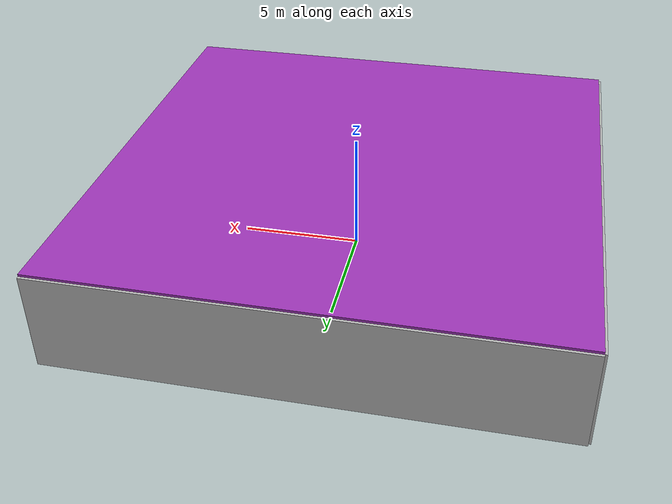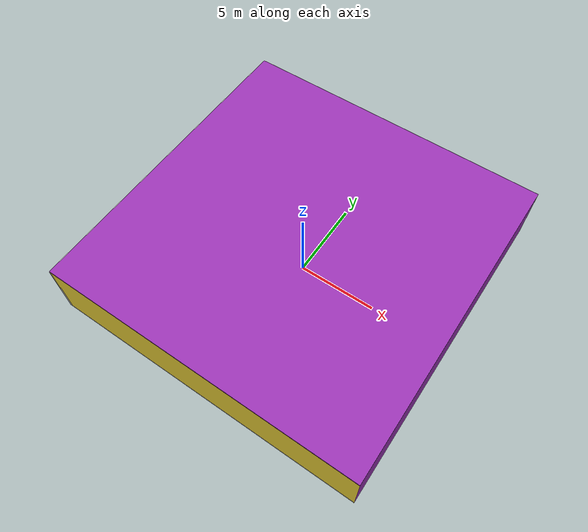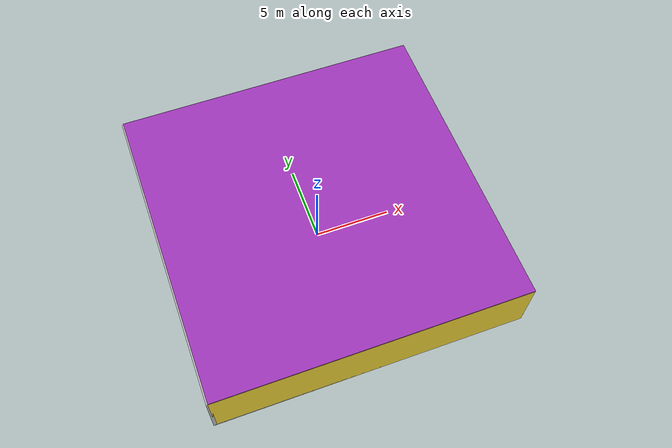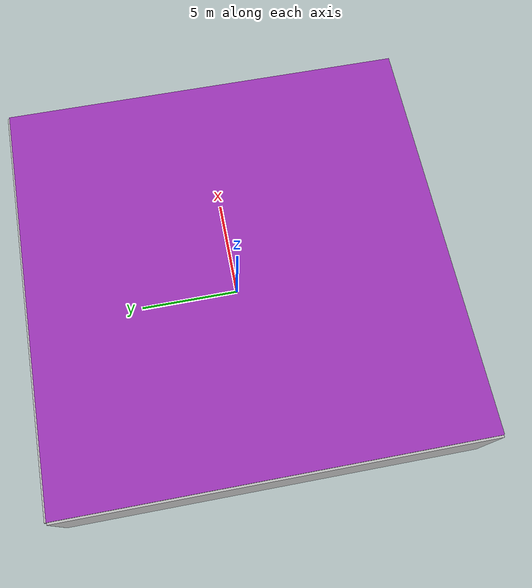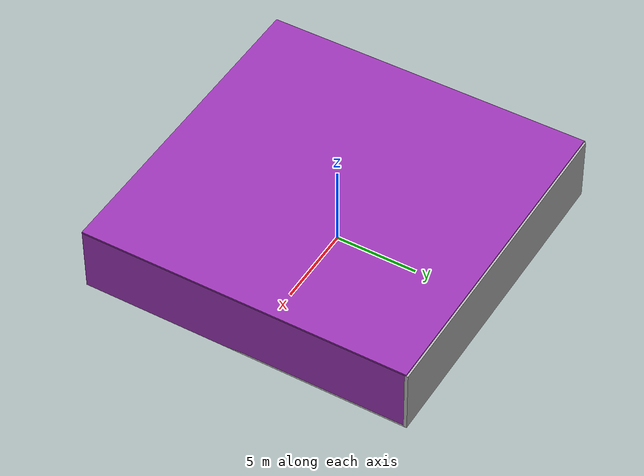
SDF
<sdf version="1.4">
 <world name="default">
  <physics type="ode">
   <max_step_size>0.001</max_step_size>
   <real_time_factor>1</real_time_factor>
   <real_time_update_rate>1000</real_time_update_rate>
   <gravity>0 0 -9.8</gravity>
  </physics>
  <scene><ambient>0.4 0.4 0.4 1</ambient><background>0.7 0.7 0.7 1</background><shadows>1</shadows></scene>
  <model name="Surrounding">
   <static>1</static>
   <link name="Ceiling">
    <collision name="Ceiling_Collision"><geometry><box><size>20 20 0.1</size></box></geometry></collision>
    <visual name="Ceiling_Visual">
     <geometry><box><size>20 20 0.1</size></box></geometry>
     <material>
      <script><uri>file://media/materials/scripts/gazebo.material</uri><name>Gazebo/PurpleGlow</name></script>
     </material>
    </visual>
    <pose>0 0 4.05 0 0 0</pose>
   </link>
   <link name="Wall_South">
    <collision name="Wall_South_Collision">
     <geometry><box><size>20 0 4</size></box></geometry>
     <pose>0 0 2 0 -0 0</pose>
    </collision>
    <visual name="Wall_South_Visual">
     <pose>0 0 2 0 -0 0</pose>
     <geometry><box><size>20 0 4</size></box></geometry>
     <material>
      <script><uri>file://media/materials/scripts/gazebo.material</uri><name>Gazebo/ZincYellow</name></script>
     </material>
    </visual>
    <velocity_decay><linear>0</linear><angular>0</angular></velocity_decay>
    <pose>0 -10 0 0 -0 0</pose>
   </link>
   <link name="Wall_East">
    <collision name="Wall_21_Collision">
     <geometry><box><size>20 0 4</size></box></geometry>
     <pose>0 0 2 0 -0 0</pose>
    </collision>
    <visual name="Wall_21_Visual">
     <pose>0 0 2 0 -0 0</pose>
     <geometry><box><size>20 0 4</size></box></geometry>
     <material>
      <script><uri>file://media/materials/scripts/gazebo.material</uri><name>Gazebo/PurpleGlow</name></script>
     </material>
    </visual>
    <velocity_decay><linear>0</linear><angular>0</angular></velocity_decay>
    <pose>10 0 0 0 -0 1.5708</pose>
   </link>
   <link name="Wall_North">
    <collision name="Wall_22_Collision">
     <geometry><box><size>20 0.2 4</size></box></geometry>
     <pose>0 0 2 0 -0 0</pose>
    </collision>
    <visual name="Wall_22_Visual">
     <pose>0 0 2 0 -0 0</pose>
     <geometry><box><size>20 0.2 4</size></box></geometry>
     <material>
      <script><uri>file://media/materials/scripts/gazebo.material</uri><name>Gazebo/CloudySky</name></script>
     </material>
    </visual>
    <velocity_decay><linear>0</linear><angular>0</angular></velocity_decay>
    <pose>0 10 0 0 -0 0</pose>
   </link>
   <link name="Wall_West">
    <collision name="Wall_23_Collision">
     <geometry><box><size>20 0.2 4</size></box></geometry>
     <pose>0 0 2 0 -0 0</pose>
    </collision>
    <visual name="Wall_23_Visual">
     <pose>0 0 2 0 -0 0</pose>
     <geometry><box><size>20 0.2 4</size></box></geometry>
     <material>
      <script><uri>file://media/materials/scripts/gazebo.material</uri><name>Gazebo/LightOff</name></script>
     </material>
    </visual>
    <velocity_decay><linear>0</linear><angular>0</angular></velocity_decay>
    <pose>-10 0 0 0 0 -1.5708</pose>
   </link>
   <link name="Ground_link">
    <collision name="collision">
     <pose>0 0 .05 0 -0 0</pose>
     <geometry><box><size>20 20 0.1</size></box></geometry>
    </collision>
    <visual name="visual">
     <pose>0 0 .05 0 -0 0</pose>
     <geometry><box><size>20 20 0.1</size></box></geometry>
     <material>
      <script><uri>file://media/materials/scripts/gazebo.material</uri><name>Gazebo/WhiteGlow</name></script>
     </material>
    </visual>
   </link>
   <static>1</static>
  </model>
  <spherical_coordinates>
   <surface_model>EARTH_WGS84</surface_model>
   <latitude_deg>0</latitude_deg>
   <longitude_deg>0</longitude_deg>
   <elevation>0</elevation>
   <heading_deg>0</heading_deg>
  </spherical_coordinates>
  <light name="lightball_0" type="diffuse">
   <diffuse>0.8 0.8 0.8 1</diffuse>
   <specular>0.2 0.2 0.2 1</specular>
   <attenuation>
    <range>100</range>
    <constant>0.7</constant>
    <linear>0.01</linear>
    <quadratic>0.001</quadratic>
   </attenuation>
   <direction>-0.5 0.1 -0.9</direction>
   <pose>-9.23783426389 8.83188594664 1.63845439561 0 0 0</pose>
  </light>
  <light name="lightball_1" type="diffuse">
   <diffuse>0.8 0.8 0.8 1</diffuse>
   <specular>0.2 0.2 0.2 1</specular>
   <attenuation>
    <range>100</range>
    <constant>0.7</constant>
    <linear>0.01</linear>
    <quadratic>0.001</quadratic>
   </attenuation>
   <direction>-0.5 0.1 -0.9</direction>
   <pose>1.5221049169 3.91926330399 1.30510591373 0 0 0</pose>
  </light>
  <light name="lightball_2" type="diffuse">
   <diffuse>0.8 0.8 0.8 1</diffuse>
   <specular>0.2 0.2 0.2 1</specular>
   <attenuation>
    <range>100</range>
    <constant>0.7</constant>
    <linear>0.01</linear>
    <quadratic>0.001</quadratic>
   </attenuation>
   <direction>-0.5 0.1 -0.9</direction>
   <pose>-4.12801093103 3.23389357087 3.42942670389 0 0 0</pose>
  </light>
  <light name="lightball_3" type="diffuse">
   <diffuse>0.8 0.8 0.8 1</diffuse>
   <specular>0.2 0.2 0.2 1</specular>
   <attenuation>
    <range>100</range>
    <constant>0.7</constant>
    <linear>0.01</linear>
    <quadratic>0.001</quadratic>
   </attenuation>
   <direction>-0.5 0.1 -0.9</direction>
   <pose>-7.63306736397 -2.72900682821 3.05671201238 0 0 0</pose>
  </light>
  <light name="lightball_4" type="diffuse">
   <diffuse>0.8 0.8 0.8 1</diffuse>
   <specular>0.2 0.2 0.2 1</specular>
   <attenuation>
    <range>100</range>
    <constant>0.7</constant>
    <linear>0.01</linear>
    <quadratic>0.001</quadratic>
   </attenuation>
   <direction>-0.5 0.1 -0.9</direction>
   <pose>6.67424515048 6.87434141201 3.62344104549 0 0 0</pose>
  </light>
  <light name="lightball_5" type="diffuse">
   <diffuse>0.8 0.8 0.8 1</diffuse>
   <specular>0.2 0.2 0.2 1</specular>
   <attenuation>
    <range>100</range>
    <constant>0.7</constant>
    <linear>0.01</linear>
    <quadratic>0.001</quadratic>
   </attenuation>
   <direction>-0.5 0.1 -0.9</direction>
   <pose>-7.13364596555 4.82404374386 0.823513108542 0 0 0</pose>
  </light>
  <light name="lightball_6" type="diffuse">
   <diffuse>0.8 0.8 0.8 1</diffuse>
   <specular>0.2 0.2 0.2 1</specular>
   <attenuation>
    <range>100</range>
    <constant>0.7</constant>
    <linear>0.01</linear>
    <quadratic>0.001</quadratic>
   </attenuation>
   <direction>-0.5 0.1 -0.9</direction>
   <pose>5.44833746234 -7.49963576257 3.31711002794 0 0 0</pose>
  </light>
  <include>
   <uri>model://construction_cone</uri>
   <pose>-6.40673039999 -1.94616017065 0 0 0 0.946607392792</pose>
  </include>
  <include>
   <uri>model://textured_shapes</uri>
   <pose>-4.28043594956 1.2462121437 0 0 0 1.00167458639</pose>
  </include>
  <include>
   <uri>model://robocup_3Dsim_goal</uri>
   <pose>-1.49218047768 4.65904731507 0 0 0 2.00458617216</pose>
  </include>
  <include><uri>model://cabinet</uri><pose>6.8654787631 -3.64627536775 0 0 0 2.15180203775</pose></include>
  <include><uri>model://cabinet</uri><pose>8.53493145812 1.38692017196 0 0 0 0.863034728162</pose></include>
 </world>
</sdf>

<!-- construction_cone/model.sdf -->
<sdf version="1.5">
  <model name="Construction Cone">
    <link name="link">
      <collision name="collision">
        <geometry>
          <mesh>
            <scale>10 10 10</scale>
            <uri>file://isr-testbed/construction_cone/meshes/construction_cone.dae</uri>
          </mesh>
        </geometry>
      </collision>
      <visual name="visual">
        <geometry>
          <mesh>
            <scale>10 10 10</scale>
            <uri>file://isr-testbed/construction_cone/meshes/construction_cone.dae</uri>
          </mesh>
        </geometry>
      </visual>
    </link>
  </model>
</sdf>

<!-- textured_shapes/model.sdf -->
<sdf version="1.6">
  <model name="textured_shapes">
    <pose>0 0 0.5 0 0 0</pose>
    <link name="box">
      <pose>0 -1.5 0 0 0 0</pose>
      <collision name="collision">
        <geometry>
          <box>
            <size>1 1 1</size>
          </box>
        </geometry>
      </collision>
      <visual name="visual">
        <geometry>
          <box>
            <size>1 1 1</size>
          </box>
        </geometry>
        <material>
          <script>
            <uri>model://../model_source/models/textured_shapes/materials/scripts</uri>
            <uri>model://../model_source/models/textured_shapes/materials/textures</uri>
            <name>TexturedShape/Squares</name>
          </script>
        </material>
      </visual>
    </link>
    <link name="sphere">
      <collision name="collision">
        <geometry>
          <sphere>
            <radius>0.5</radius>
          </sphere>
        </geometry>
      </collision>
      <visual name="visual">
        <geometry>
          <sphere>
            <radius>0.5</radius>
          </sphere>
        </geometry>
        <material>
          <script>
            <uri>model://../model_source/models/textured_shapes/materials/scripts</uri>
            <uri>model://../model_source/models/textured_shapes/materials/textures</uri>
            <name>TexturedShape/Squares</name>
          </script>
        </material>
      </visual>
    </link>
    <link name="cylinder">
      <pose>0 1.5 0 0 0 0</pose>
      <collision name="collision">
        <geometry>
          <cylinder>
            <radius>0.5</radius>
            <length>1</length>
          </cylinder>
        </geometry>
      </collision>
      <visual name="visual">
        <geometry>
          <cylinder>
            <radius>0.5</radius>
            <length>1</length>
          </cylinder>
        </geometry>
        <material>
          <script>
            <uri>model://../model_source/models/textured_shapes/materials/scripts</uri>
            <uri>model://../model_source/models/textured_shapes/materials/textures</uri>
            <name>TexturedShape/Squares</name>
          </script>
        </material>
      </visual>
    </link>
  </model>
</sdf>

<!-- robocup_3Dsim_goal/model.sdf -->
<sdf version="1.5">
  <model name="robocup_3d_goal">
    <static>true</static>
    <link name="left_post">
      <pose>0 1.05 0.45 0 0 0</pose>
      <collision name="collision">
        <geometry>
          <cylinder>
            <radius>0.05</radius>
            <length>0.9</length>
          </cylinder>
        </geometry>
      </collision>
      <visual name="visual">
        <geometry>
          <cylinder>
            <radius>0.05</radius>
            <length>0.9</length>
          </cylinder>
        </geometry>
        <material>
          <script>
            <uri>file://media/materials/scripts/gazebo.material</uri>
            <name>Gazebo/ZincYellow</name>
          </script>
        </material>
      </visual>
    </link>
    <link name="left_support_horiz_lower">
      <pose>0.30 1.05 0.01 0 0 0</pose>
      <collision name="collision">
        <geometry>
          <box>
            <size>0.50 0.02 0.02</size>
          </box>
        </geometry>
      </collision>
      <visual name="visual">
        <geometry>
          <box>
            <size>0.50 0.02 0.02</size>
          </box>
        </geometry>
        <material>
          <script>
            <uri>file://media/materials/scripts/gazebo.material</uri>
            <name>Gazebo/White</name>
          </script>
        </material>
      </visual>
    </link>
    <link name="left_support_horiz_upper">
      <pose>0.30 1.05 0.79 0 0 0</pose>
      <collision name="collision">
        <geometry>
          <box>
            <size>0.50 0.02 0.02</size>
          </box>
        </geometry>
      </collision>
      <visual name="visual">
        <geometry>
          <box>
            <size>0.50 0.02 0.02</size>
          </box>
        </geometry>
        <material>
          <script>
            <uri>file://media/materials/scripts/gazebo.material</uri>
            <name>Gazebo/White</name>
          </script>
        </material>
      </visual>
    </link>
    <link name="left_support_vertical">
      <pose>0.56 1.05 0.4 0 1.5708 0</pose>
      <collision name="collision">
        <geometry>
          <box>
            <size>0.80 0.02 0.02</size>
          </box>
        </geometry>
      </collision>
      <visual name="visual">
        <geometry>
          <box>
            <size>0.80 0.02 0.02</size>
          </box>
        </geometry>
        <material>
          <script>
            <uri>file://media/materials/scripts/gazebo.material</uri>
            <name>Gazebo/White</name>
          </script>
        </material>
      </visual>
    </link>
    <link name="right_support_horiz_lower">
      <pose>0.30 -1.05 0.01 0 0 0</pose>
      <collision name="collision">
        <geometry>
          <box>
            <size>0.50 0.02 0.02</size>
          </box>
        </geometry>
      </collision>
      <visual name="visual">
        <geometry>
          <box>
            <size>0.50 0.02 0.02</size>
          </box>
        </geometry>
        <material>
          <script>
            <uri>file://media/materials/scripts/gazebo.material</uri>
            <name>Gazebo/White</name>
          </script>
        </material>
      </visual>
    </link>
    <link name="right_support_horiz_upper">
      <pose>0.30 -1.05 0.79 0 0 0</pose>
      <collision name="collision">
        <geometry>
          <box>
            <size>0.50 0.02 0.02</size>
          </box>
        </geometry>
      </collision>
      <visual name="visual">
        <geometry>
          <box>
            <size>0.50 0.02 0.02</size>
          </box>
        </geometry>
        <material>
          <script>
            <uri>file://media/materials/scripts/gazebo.material</uri>
            <name>Gazebo/White</name>
          </script>
        </material>
      </visual>
    </link>
    <link name="right_support_vertical">
      <pose>0.56 -1.05 0.4 0 1.5708 0</pose>
      <collision name="collision">
        <geometry>
          <box>
            <size>0.80 0.02 0.02</size>
          </box>
        </geometry>
      </collision>
      <visual name="visual">
        <geometry>
          <box>
            <size>0.80 0.02 0.02</size>
          </box>
        </geometry>
        <material>
          <script>
            <uri>file://media/materials/scripts/gazebo.material</uri>
            <name>Gazebo/White</name>
          </script>
        </material>
      </visual>
    </link>
    <link name="center_support_horiz_lower">
      <pose>0.56 0 0.01 0 1.5708 0</pose>
      <collision name="collision">
        <geometry>
          <box>
            <size>0.02 2.08 0.02</size>
          </box>
        </geometry>
      </collision>
      <visual name="visual">
        <geometry>
          <box>
            <size>0.02 2.08 0.02</size>
          </box>
        </geometry>
        <material>
          <script>
            <uri>file://media/materials/scripts/gazebo.material</uri>
            <name>Gazebo/White</name>
          </script>
        </material>
      </visual>
    </link>
    <link name="center_support_horiz_upper">
      <pose>0.56 0 0.79 0 1.5708 0</pose>
      <collision name="collision">
        <geometry>
          <box>
            <size>0.02 2.08 0.02</size>
          </box>
        </geometry>
      </collision>
      <visual name="visual">
        <geometry>
          <box>
            <size>0.02 2.08 0.02</size>
          </box>
        </geometry>
        <material>
          <script>
            <uri>file://media/materials/scripts/gazebo.material</uri>
            <name>Gazebo/White</name>
          </script>
        </material>
      </visual>
    </link>
    <link name="right_post">
      <pose>0 -1.05 0.45 0 0 0</pose>
      <collision name="collision">
        <geometry>
          <cylinder>
            <radius>0.05</radius>
            <length>0.9</length>
          </cylinder>
        </geometry>
      </collision>
      <visual name="visual">
        <geometry>
          <cylinder>
            <radius>0.05</radius>
            <length>0.9</length>
          </cylinder>
        </geometry>
        <material>
          <script>
            <uri>file://media/materials/scripts/gazebo.material</uri>
            <name>Gazebo/ZincYellow</name>
          </script>
        </material>
      </visual>
    </link>
    <link name="crossbar">
      <pose>0 0 0.85 1.57 1.57 0</pose>
      <collision name="collision">
        <geometry>
          <cylinder>
            <radius>0.05</radius>
            <length>2.0</length>
          </cylinder>
        </geometry>
      </collision>
      <visual name="visual">
        <geometry>
          <cylinder>
            <radius>0.05</radius>
            <length>2.0</length>
          </cylinder>
        </geometry>
        <material>
          <script>
            <uri>file://media/materials/scripts/gazebo.material</uri>
            <name>Gazebo/ZincYellow</name>
          </script>
        </material>
      </visual>
    </link>
    <link name="center_net">
      <pose>0.56 0 0.40 0 0 0</pose>
      <collision name="collision">
        <geometry>
          <box>
            <size>0.01 2.1 0.80</size>
          </box>
        </geometry>
      </collision>
      <visual name="visual">
        <geometry>
          <box>
            <size>0.01 2.1 0.80</size>
          </box>
        </geometry>
        <material>
          <script>
            <uri>model://../model_source/models/robocup09_spl_field/materials/scripts/</uri>
            <uri>model://../model_source/models/robocup09_spl_field/materials/textures/</uri>
            <name>RoboCup/Net</name>
          </script>
        </material>
      </visual>
    </link>
    <link name="left_net">
      <pose>0.30 1.05 0.40 0 0 0</pose>
      <collision name="collision">
        <geometry>
          <box>
            <size>0.50 0.01 0.76</size>
          </box>
        </geometry>
      </collision>
      <visual name="visual">
        <geometry>
          <box>
            <size>0.50 0.01 0.76</size>
          </box>
        </geometry>
        <material>
          <script>
            <uri>model://../model_source/models/robocup09_spl_field/materials/scripts/</uri>
            <uri>model://../model_source/models/robocup09_spl_field/materials/textures/</uri>
            <name>RoboCup/Net</name>
          </script>
        </material>
      </visual>
    </link>
    <link name="right_net">
      <pose>0.30 -1.05 0.40 0 0 0</pose>
      <collision name="collision">
        <geometry>
          <box>
            <size>0.50 0.01 0.76</size>
          </box>
        </geometry>
      </collision>
      <visual name="visual">
        <geometry>
          <box>
            <size>0.50 0.01 0.76</size>
          </box>
        </geometry>
        <material>
          <script>
            <uri>model://../model_source/models/robocup09_spl_field/materials/scripts/</uri>
            <uri>model://../model_source/models/robocup09_spl_field/materials/textures/</uri>
            <name>RoboCup/Net</name>
          </script>
        </material>
      </visual>
    </link>
  </model>
</sdf>

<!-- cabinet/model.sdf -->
<sdf version="1.5">
  <model name="cabinet">
    <static>true</static>
    <link name="cabinet_bottom_plate">
      <inertial>
        <pose>0 0 -1 0 0 0</pose>
        <inertia>
          <ixx>2.050000</ixx>
          <ixy>0</ixy>
          <ixz>0</ixz>
          <iyy>2.050000</iyy>
          <iyz>0</iyz>
          <izz>2.050000</izz>
        </inertia>
        <mass>25.000000</mass>
      </inertial>
      <collision name="cabinet_bottom_plate_geom">
        <pose>0 0 0.010000 0 0 0</pose>
        <geometry>
          <box>
            <size>0.450000 0.450000 0.020000</size>
          </box>
        </geometry>
      </collision>
      <visual name="cabinet_bottom_plate_geom_visual">
        <pose>0 0 0.010000 0 0 0</pose>
        <geometry>
          <box>
            <size>0.450000 0.450000 0.020000</size>
          </box>
        </geometry>
        <material>
          <script>
            <uri>model://media/materials/scripts/gazebo.material</uri>
            <name>Gazebo/Wood</name>
          </script>
        </material>
      </visual>
      <collision name="cabinet_bottom_plate_geom_cabinet_back_plate">
        <pose>0.235000 0 0.510000 0 0 0</pose>
        <geometry>
          <box>
            <size>0.020000 0.450000 1.020000</size>
          </box>
        </geometry>
      </collision>
      <visual name="cabinet_bottom_plate_geom_cabinet_back_plate_visual">
        <pose>0.235000 0 0.510000 0 0 0</pose>
        <geometry>
          <box>
            <size>0.020000 0.450000 1.020000</size>
          </box>
        </geometry>
        <material>
          <script>
            <uri>model://media/materials/scripts/gazebo.material</uri>
            <name>Gazebo/Wood</name>
          </script>
        </material>
      </visual>
      <collision name="cabinet_bottom_plate_geom_cabinet_left_plate">
        <pose>0 0.235000 0.510000 0 0 0</pose>
        <geometry>
          <box>
            <size>0.450000 0.020000 1.020000</size>
          </box>
        </geometry>
      </collision>
      <visual name="cabinet_bottom_plate_geom_cabinet_left_plate_visual">
        <pose>0 0.235000 0.510000 0 0 0</pose>
        <geometry>
          <box>
            <size>0.450000 0.020000 1.020000</size>
          </box>
        </geometry>
        <material>
          <script>
            <uri>model://media/materials/scripts/gazebo.material</uri>
            <name>Gazebo/Wood</name>
          </script>
        </material>
      </visual>
      <collision name="cabinet_bottom_plate_geom_cabinet_middle_plate">
        <pose>0 0 0.510000 0 0 0</pose>
        <geometry>
          <box>
            <size>0.450000 0.450000 0.020000</size>
          </box>
        </geometry>
      </collision>
      <visual name="cabinet_bottom_plate_geom_cabinet_middle_plate_visual">
        <pose>0 0 0.510000 0 0 0</pose>
        <geometry>
          <box>
            <size>0.450000 0.450000 0.020000</size>
          </box>
        </geometry>
        <material>
          <script>
            <uri>model://media/materials/scripts/gazebo.material</uri>
            <name>Gazebo/Wood</name>
          </script>
        </material>
      </visual>
      <collision name="cabinet_bottom_plate_geom_cabinet_right_plate">
        <pose>0 -0.235000 0.510000 0 0 0</pose>
        <geometry>
          <box>
            <size>0.450000 0.020000 1.020000</size>
          </box>
        </geometry>
      </collision>
      <visual name="cabinet_bottom_plate_geom_cabinet_right_plate_visual">
        <pose>0 -0.235000 0.510000 0 0 0</pose>
        <geometry>
          <box>
            <size>0.450000 0.020000 1.020000</size>
          </box>
        </geometry>
        <material>
          <script>
            <uri>model://media/materials/scripts/gazebo.material</uri>
            <name>Gazebo/Wood</name>
          </script>
        </material>
      </visual>
      <collision name="cabinet_bottom_plate_geom_cabinet_top_plate">
        <pose>0 0 1.010000 0 0 0</pose>
        <geometry>
          <box>
            <size>0.450000 0.450000 0.020000</size>
          </box>
        </geometry>
      </collision>
      <visual name="cabinet_bottom_plate_geom_cabinet_top_plate_visual">
        <pose>0 0 1.010000 0 0 0</pose>
        <geometry>
          <box>
            <size>0.450000 0.450000 0.020000</size>
          </box>
        </geometry>
        <material>
          <script>
            <uri>model://media/materials/scripts/gazebo.material</uri>
            <name>Gazebo/Wood</name>
          </script>
        </material>
      </visual>
    </link>
  </model>
</sdf>
